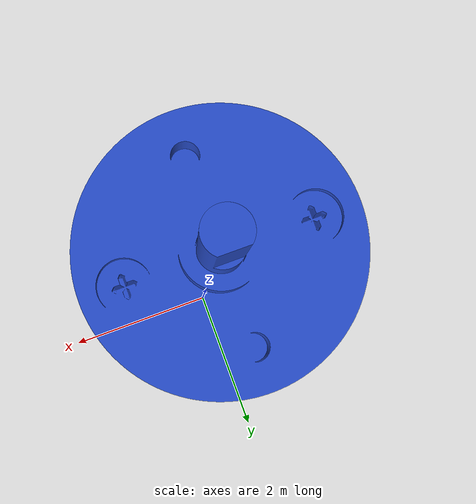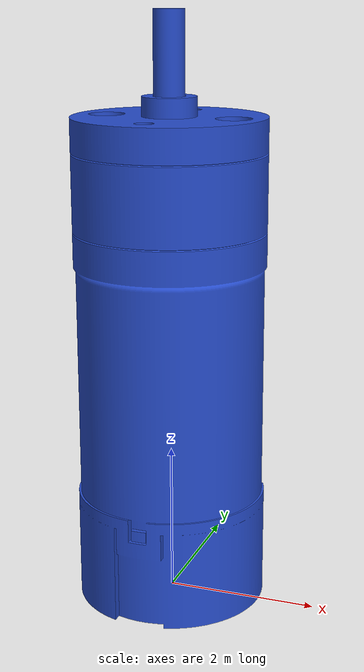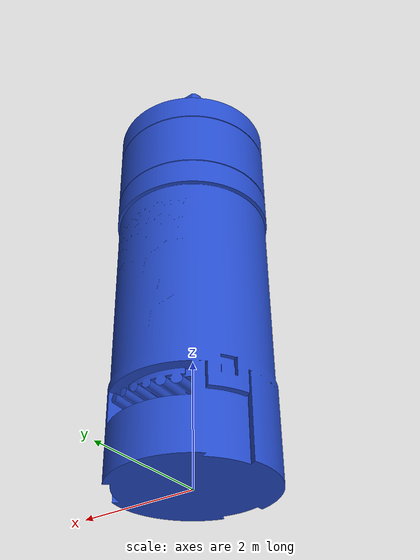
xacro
<?xml version="1.0"?>
<robot xmlns:xacro="http://www.ros.org/wiki/xacro" name="polou4801">

  <material name="orange">
      <color rgba="1 0.3 0.1 1"/>
  </material>

  <link name="world"></link>

  <joint name="world_to_base" type="fixed">
      <parent link="world" />
      <child link="robot_body" />
      <origin  rpy="0 0 0" xyz="0 0 0" />
  </joint>

  <link name="robot_body">
    <visual>
      <origin xyz="0 0 0" rpy="0 0 0" />
      <geometry>
	      <mesh filename="file:///home/jackfrye/Documents/Robotics/MITCheetah/Modelling/ROS2/workspace/src/motor_sim/meshes/polou_4801_body_x100.dae"/>
      </geometry>
      <material name="blue"/>
    </visual>
    <collision>
      <geometry>
	      <mesh filename="file:///home/jackfrye/Documents/Robotics/MITCheetah/Modelling/ROS2/workspace/src/motor_sim/meshes/polou_4801_body_x100.dae"/>
      </geometry>
    </collision>
    <inertial>
        <origin xyz="0 0 0" rpy="0 0 0"/>
        <mass value="9.4" />
        <inertia ixx="0.242833" ixy="0.0" ixz="0.0" iyy="0.242833" iyz="0.0" izz="0.29375" />
    </inertial>
  </link>

  <joint name="body_to_rotor" type="revolute">
      <parent link="robot_body" />
      <child link="robot_rotor" />
      <axis xyz="0 0 1" />
      <origin  xyz="0 0 0 " rpy="0 0 0" />
      <limit lower="0" upper="${4*pi}" effort="10" velocity="3"/>
  </joint>

  <link name="robot_rotor">
    <visual>
      <origin xyz="0 0 6.5" rpy="0 0 0" />
      <geometry>
	      <mesh filename="file:///home/jackfrye/Documents/Robotics/MITCheetah/Modelling/ROS2/workspace/src/motor_sim/meshes/polou_4801_rotor_x100.dae"/>
      </geometry>
      <material name="blue"/>
    </visual>
    <collision>
      <origin xyz="0 0 6.5" rpy="0 0 0" />
      <geometry>
	      <mesh filename="file:///home/jackfrye/Documents/Robotics/MITCheetah/Modelling/ROS2/workspace/src/motor_sim/meshes/polou_4801_rotor_x100.dae"/>
      </geometry>
    </collision>
    <inertial>
        <origin xyz="0 0 6.5" rpy="0 0 0"/>
        <mass value=".2" />
        <inertia ixx="0.000016" ixy="0.0" ixz="0.0" iyy="0.000032" iyz="0.0" izz="0.000032" />
    </inertial>
   </link>

  <xacro:include filename="gazebo.xacro" />

</robot>
